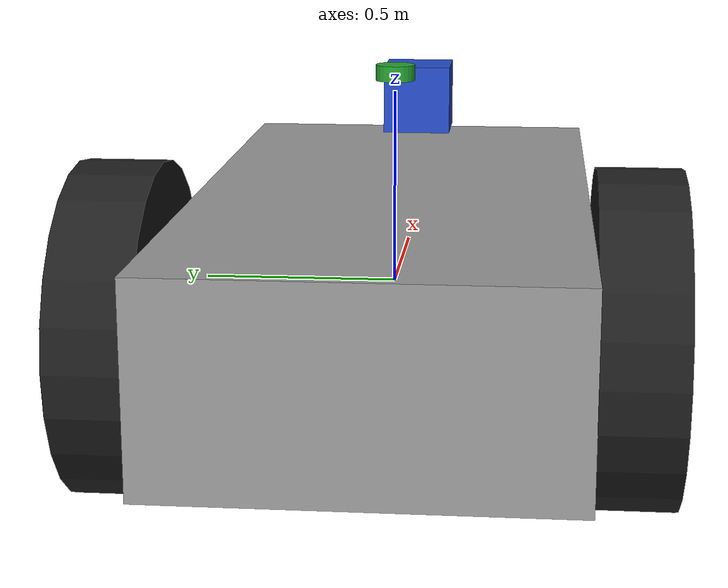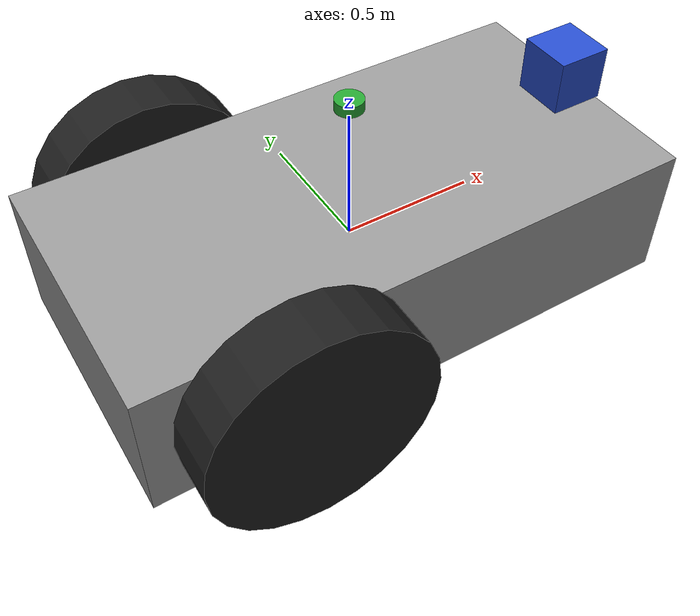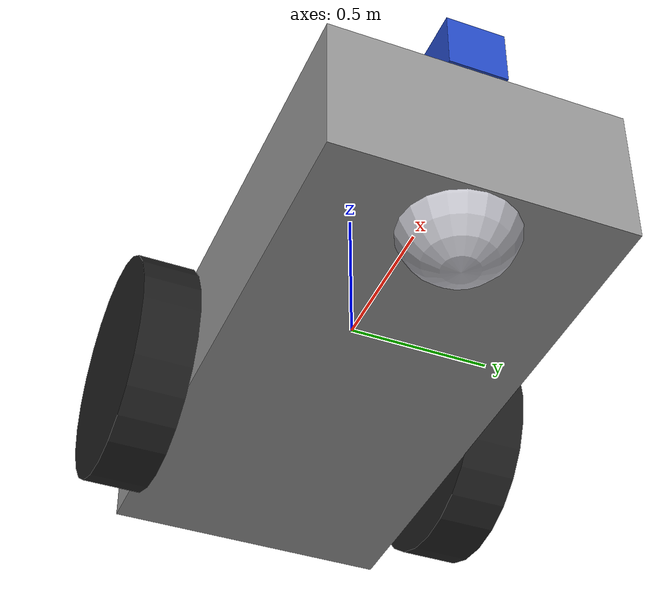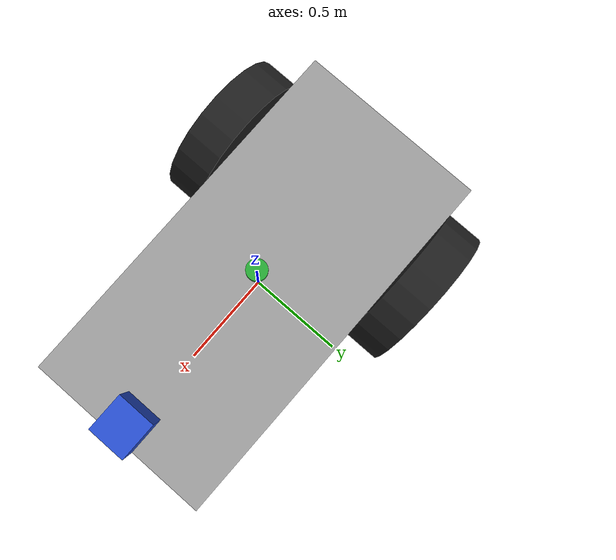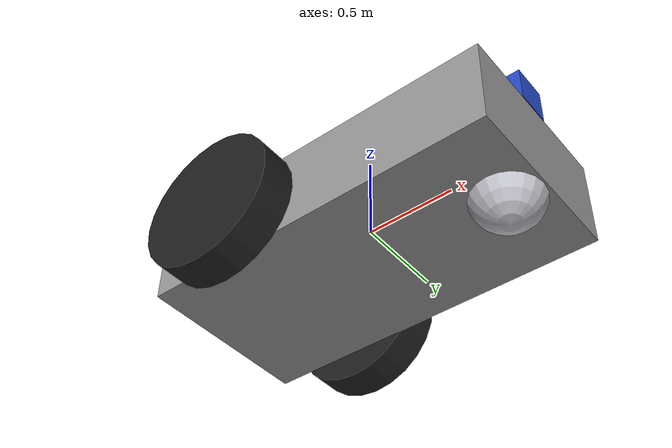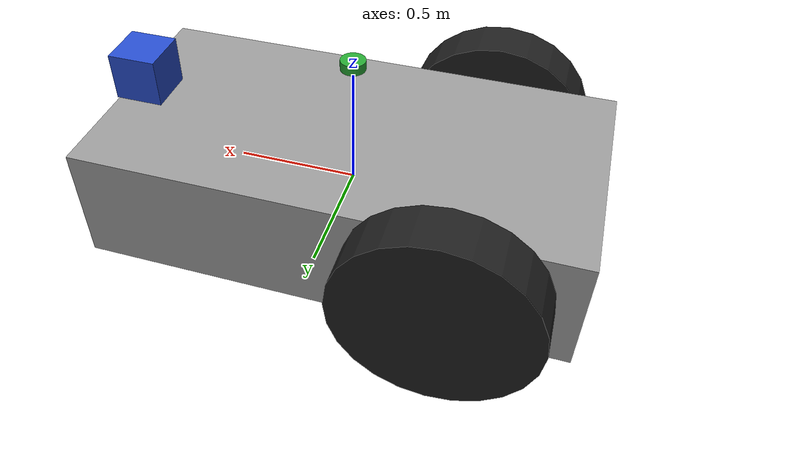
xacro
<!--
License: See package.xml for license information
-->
<?xml version="1.0"?>

<robot name="aruco_bot" xmlns:xacro="http://www.ros.org/wiki/xacro">

  <!-- External File Includes                    -->

  <xacro:include filename="$(find arucobot_description)/urdf/aruco_bot_diff.gazebo.xacro"/>
  <xacro:include filename="$(find arucobot_description)/urdf/materials.xacro"/>

  <!-- Robot Geometry Parameters                 -->

  <xacro:property name="WHEEL_RADIUS" value="0.4"/>        <!-- meters -->
  <xacro:property name="WHEEL_WIDTH" value="0.2"/>         <!-- meters -->
  <xacro:property name="CASTER_RADIUS" value="0.2"/>       <!-- meters -->
  <xacro:property name="BASE_LENGTH" value="2.0"/>         <!-- meters -->
  <xacro:property name="BASE_WIDTH" value="1.0"/>          <!-- meters -->
  <xacro:property name="BASE_HEIGHT" value="0.5"/>         <!-- meters -->
  <xacro:property name="WHEEL_SEPARATION" value="${BASE_WIDTH + WHEEL_WIDTH}"/>

  <!-- Robot Mass Properties                     -->

  <xacro:property name="BASE_MASS" value="5.0"/>           <!-- kilograms -->
  <xacro:property name="WHEEL_MASS" value="2.0"/>          <!-- kilograms -->
  <xacro:property name="CASTER_MASS" value="1.0"/>         <!-- kilograms -->

  <!-- Mathematical Constants                    -->

  <xacro:property name="PI" value="3.14159265359"/>

  <!-- Base Footprint and Chassis                -->

  <link name="base_footprint"/>

  <joint name="base_joint" type="fixed">
    <parent link="base_footprint"/>
    <child link="base_link"/>
    <origin xyz="0.0 0 0" rpy="0 0 0.0"/>
  </joint>

  <link name="base_link">
    <visual>
      <geometry>
        <box size="${BASE_LENGTH} ${BASE_WIDTH} ${BASE_HEIGHT}"/>
      </geometry>
      <material name="grey"/>
    </visual>
    <collision>
      <geometry>
        <box size="${BASE_LENGTH} ${BASE_WIDTH} ${BASE_HEIGHT}"/>
      </geometry>
    </collision>
    <inertial>
      <mass value="${BASE_MASS}"/>
      <inertia ixx="0.83333" ixy="0" ixz="0" iyy="1.66667" iyz="0" izz="1.66667"/>
    </inertial>
  </link>

  <!-- Wheel Links                               -->

  <!-- Left Wheel -->
  <link name="left_wheel">
    <visual>
      <geometry>
        <cylinder radius="${WHEEL_RADIUS}" length="${WHEEL_WIDTH}"/>
      </geometry>
      <material name="black"/>
    </visual>
    <collision>
      <geometry>
        <cylinder radius="${WHEEL_RADIUS}" length="${WHEEL_WIDTH}"/>
      </geometry>
    </collision>
    <inertial>
      <mass value="${WHEEL_MASS}"/>
      <inertia ixx="0.145833" ixy="0" ixz="0" iyy="0.145833" iyz="0" izz="0.125"/>
    </inertial>
  </link>

  <!-- Right Wheel -->
  <link name="right_wheel">
    <visual>
      <geometry>
        <cylinder radius="${WHEEL_RADIUS}" length="${WHEEL_WIDTH}"/>
      </geometry>
      <material name="black"/>
    </visual>
    <collision>
      <geometry>
        <cylinder radius="${WHEEL_RADIUS}" length="${WHEEL_WIDTH}"/>
      </geometry>
    </collision>
    <inertial>
      <mass value="${WHEEL_MASS}"/>
      <inertia ixx="0.145833" ixy="0" ixz="0" iyy="0.145833" iyz="0" izz="0.125"/>
    </inertial>
  </link>

  <!-- Caster Wheel Link                         -->

  <link name="caster">
    <visual>
      <geometry>
        <sphere radius="${CASTER_RADIUS}"/>
      </geometry>
      <material name="silver"/>
    </visual>
    <collision>
      <geometry>
        <sphere radius="${CASTER_RADIUS}"/>
      </geometry>
    </collision>
    <inertial>
      <mass value="${CASTER_MASS}"/>
      <inertia ixx="0.1" ixy="0" ixz="0" iyy="0.1" iyz="0" izz="0.1"/>
    </inertial>
  </link>

  <!-- Camera Links                              -->

  <!-- Camera Physical Link -->
  <link name="camera_link">
    <visual>
      <geometry>
        <box size="0.2 0.2 0.2"/>
      </geometry>
      <material name="blue"/>
    </visual>
    <collision>
      <geometry>
        <box size="0.2 0.2 0.2"/>
      </geometry>
    </collision>
    <inertial>
      <mass value="0.1"/>
      <inertia ixx="0.001" ixy="0" ixz="0" iyy="0.001" iyz="0" izz="0.001"/>
    </inertial>
  </link>

  <!-- Camera Optical Frame (aligned with camera sensor coordinate system) -->
  <link name="camera_link_optical"/>

  <!-- LiDAR Link                                -->

  <link name="lidar_link">
    <visual>
      <geometry>
        <cylinder radius="0.05" length="0.04"/>
      </geometry>
      <material name="green"/>
    </visual>
    <collision>
      <geometry>
        <cylinder radius="0.05" length="0.04"/>
      </geometry>
    </collision>
    <inertial>
      <mass value="0.2"/>
      <inertia ixx="0.002" ixy="0" ixz="0" iyy="0.002" iyz="0" izz="0.002"/>
    </inertial>
  </link>

  <!-- Robot Joints                              -->

  <!-- Left Wheel Joint (continuous rotation for locomotion) -->
  <joint name="left_wheel_joint" type="continuous">
    <parent link="base_link"/>
    <child link="left_wheel"/>
    <origin xyz="-0.5 ${WHEEL_SEPARATION/2} 0" rpy="-${PI/2} 0 0"/>
    <axis xyz="0 0 1"/>
    <limit effort="100" velocity="10.0"/>
  </joint>

  <!-- Right Wheel Joint (continuous rotation for locomotion) -->
  <joint name="right_wheel_joint" type="continuous">
    <parent link="base_link"/>
    <child link="right_wheel"/>
    <origin xyz="-0.5 -${WHEEL_SEPARATION/2} 0" rpy="-${PI/2} 0 0"/>
    <axis xyz="0 0 1"/>
    <limit effort="100" velocity="10.0"/>
  </joint>

  <!-- Caster Wheel Joint (fixed orientation, free to roll) -->
  <joint name="caster_joint" type="fixed">
    <parent link="base_link"/>
    <child link="caster"/>
    <origin xyz="0.8 0 -0.2" rpy="0 0 0"/>
  </joint>

  <!-- Camera Mounting Joint -->
  <joint name="camera_joint" type="fixed">
    <parent link="base_link"/>
    <child link="camera_link"/>
    <origin xyz="0.9 0 0.36" rpy="0 0 0"/>
  </joint>

  <!-- Camera Optical Frame Transformation (ROS standard camera frame alignment) -->
  <joint type="fixed" name="camera_optical_joint">
    <origin xyz="0 0 0" rpy="-${PI/2} 0 -${PI/2}"/>
    <child link="camera_link_optical"/>
    <parent link="camera_link"/>
  </joint>

  <!-- LiDAR Joint -->
  <joint name="lidar_joint" type="fixed">
    <origin xyz="0.0 0.0 0.55" rpy="0 0 0"/>
    <parent link="base_link"/>
    <child link="lidar_link"/>
  </joint>

</robot>
